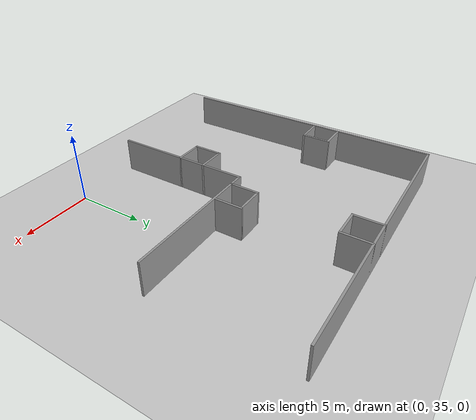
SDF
<sdf version="1.6">
 <world name="default">
  <model name="ground_plane">
   <static>1</static>
   <link name="link">
    <collision name="collision">
     <geometry><plane><normal>0 0 1</normal><size>100 100</size></plane></geometry>
     <surface><friction><ode><mu>100</mu><mu2>50</mu2></ode></friction></surface>
    </collision>
    <visual name="visual">
     <cast_shadows>0</cast_shadows>
     <geometry><plane><normal>0 0 1</normal><size>100 100</size></plane></geometry>
     <material>
      <script><uri>file://media/materials/scripts/gazebo.material</uri><name>Gazebo/Grey</name></script>
     </material>
    </visual>
   </link>
  </model>
  <model name="part_l_3">
   <link name="Wall_27">
    <pose>-0.000179 -10 0 0 -0 0</pose>
    <visual name="Wall_27_Visual">
     <pose>0 0 1.25 0 -0 0</pose>
     <geometry><box><size>20.15 0.15 2.5</size></box></geometry>
     <material>
      <script><uri>file://media/materials/scripts/gazebo.material</uri><name>Gazebo/Grey</name></script>
      <ambient>1 1 1 1</ambient>
      <diffuse>0.7 0.7 0.7 1</diffuse>
      <specular>0.01 0.01 0.01 1</specular>
      <emissive>0 0 0 1</emissive>
     </material>
    </visual>
    <collision name="Wall_27_Collision">
     <pose>0 0 1.25 0 -0 0</pose>
     <geometry><box><size>20.15 0.15 2.5</size></box></geometry>
     <surface>
      <friction>
       <ode><mu>1</mu><mu2>1</mu2><fdir1>0 0 0</fdir1><slip1>0</slip1><slip2>0</slip2></ode>
       <torsional>
        <coefficient>1</coefficient>
        <patch_radius>0</patch_radius>
        <surface_radius>0</surface_radius>
        <use_patch_radius>1</use_patch_radius>
        <ode><slip>0</slip></ode>
       </torsional>
      </friction>
      <bounce><restitution_coefficient>0</restitution_coefficient><threshold>1e+06</threshold></bounce>
      <contact>
       <collide_without_contact>0</collide_without_contact>
       <collide_without_contact_bitmask>1</collide_without_contact_bitmask>
       <collide_bitmask>1</collide_bitmask>
       <ode>
        <soft_cfm>0</soft_cfm>
        <soft_erp>0.2</soft_erp>
        <kp>1e+13</kp>
        <kd>1</kd>
        <max_vel>0.01</max_vel>
        <min_depth>0</min_depth>
       </ode>
       <bullet>
        <split_impulse>1</split_impulse>
        <split_impulse_penetration_threshold>-0.01</split_impulse_penetration_threshold>
        <soft_cfm>0</soft_cfm>
        <soft_erp>0.2</soft_erp>
        <kp>1e+13</kp>
        <kd>1</kd>
       </bullet>
      </contact>
     </surface>
    </collision>
   </link>
   <link name="Wall_28">
    <pose>9.99982 0 0 0 -0 1.5708</pose>
    <visual name="Wall_28_Visual">
     <pose>0 0 1.25 0 -0 0</pose>
     <geometry><box><size>20.15 0.15 2.5</size></box></geometry>
     <material>
      <script><uri>file://media/materials/scripts/gazebo.material</uri><name>Gazebo/Grey</name></script>
      <ambient>1 1 1 1</ambient>
      <diffuse>0.7 0.7 0.7 1</diffuse>
      <specular>0.01 0.01 0.01 1</specular>
      <emissive>0 0 0 1</emissive>
     </material>
    </visual>
    <collision name="Wall_28_Collision">
     <pose>0 0 1.25 0 -0 0</pose>
     <geometry><box><size>20.15 0.15 2.5</size></box></geometry>
     <surface>
      <friction>
       <ode><mu>1</mu><mu2>1</mu2><fdir1>0 0 0</fdir1><slip1>0</slip1><slip2>0</slip2></ode>
       <torsional>
        <coefficient>1</coefficient>
        <patch_radius>0</patch_radius>
        <surface_radius>0</surface_radius>
        <use_patch_radius>1</use_patch_radius>
        <ode><slip>0</slip></ode>
       </torsional>
      </friction>
      <bounce><restitution_coefficient>0</restitution_coefficient><threshold>1e+06</threshold></bounce>
      <contact>
       <collide_without_contact>0</collide_without_contact>
       <collide_without_contact_bitmask>1</collide_without_contact_bitmask>
       <collide_bitmask>1</collide_bitmask>
       <ode>
        <soft_cfm>0</soft_cfm>
        <soft_erp>0.2</soft_erp>
        <kp>1e+13</kp>
        <kd>1</kd>
        <max_vel>0.01</max_vel>
        <min_depth>0</min_depth>
       </ode>
       <bullet>
        <split_impulse>1</split_impulse>
        <split_impulse_penetration_threshold>-0.01</split_impulse_penetration_threshold>
        <soft_cfm>0</soft_cfm>
        <soft_erp>0.2</soft_erp>
        <kp>1e+13</kp>
        <kd>1</kd>
       </bullet>
      </contact>
     </surface>
    </collision>
   </link>
   <link name="Wall_30">
    <pose>-5.00018 0 0 0 -0 0</pose>
    <visual name="Wall_30_Visual">
     <pose>0 0 1.25 0 -0 0</pose>
     <geometry><box><size>10.15 0.15 2.5</size></box></geometry>
     <material>
      <script><uri>file://media/materials/scripts/gazebo.material</uri><name>Gazebo/Grey</name></script>
      <ambient>1 1 1 1</ambient>
      <diffuse>0.7 0.7 0.7 1</diffuse>
      <specular>0.01 0.01 0.01 1</specular>
      <emissive>0 0 0 1</emissive>
     </material>
    </visual>
    <collision name="Wall_30_Collision">
     <pose>0 0 1.25 0 -0 0</pose>
     <geometry><box><size>10.15 0.15 2.5</size></box></geometry>
     <surface>
      <friction>
       <ode><mu>1</mu><mu2>1</mu2><fdir1>0 0 0</fdir1><slip1>0</slip1><slip2>0</slip2></ode>
       <torsional>
        <coefficient>1</coefficient>
        <patch_radius>0</patch_radius>
        <surface_radius>0</surface_radius>
        <use_patch_radius>1</use_patch_radius>
        <ode><slip>0</slip></ode>
       </torsional>
      </friction>
      <bounce><restitution_coefficient>0</restitution_coefficient><threshold>1e+06</threshold></bounce>
      <contact>
       <collide_without_contact>0</collide_without_contact>
       <collide_without_contact_bitmask>1</collide_without_contact_bitmask>
       <collide_bitmask>1</collide_bitmask>
       <ode>
        <soft_cfm>0</soft_cfm>
        <soft_erp>0.2</soft_erp>
        <kp>1e+13</kp>
        <kd>1</kd>
        <max_vel>0.01</max_vel>
        <min_depth>0</min_depth>
       </ode>
       <bullet>
        <split_impulse>1</split_impulse>
        <split_impulse_penetration_threshold>-0.01</split_impulse_penetration_threshold>
        <soft_cfm>0</soft_cfm>
        <soft_erp>0.2</soft_erp>
        <kp>1e+13</kp>
        <kd>1</kd>
       </bullet>
      </contact>
     </surface>
    </collision>
   </link>
   <link name="Wall_31">
    <pose>-0.000179 5 0 0 -0 1.5708</pose>
    <visual name="Wall_31_Visual">
     <pose>0 0 1.25 0 -0 0</pose>
     <geometry><box><size>10.15 0.15 2.5</size></box></geometry>
     <material>
      <script><uri>file://media/materials/scripts/gazebo.material</uri><name>Gazebo/Grey</name></script>
      <ambient>1 1 1 1</ambient>
      <diffuse>0.7 0.7 0.7 1</diffuse>
      <specular>0.01 0.01 0.01 1</specular>
      <emissive>0 0 0 1</emissive>
     </material>
    </visual>
    <collision name="Wall_31_Collision">
     <pose>0 0 1.25 0 -0 0</pose>
     <geometry><box><size>10.15 0.15 2.5</size></box></geometry>
     <surface>
      <friction>
       <ode><mu>1</mu><mu2>1</mu2><fdir1>0 0 0</fdir1><slip1>0</slip1><slip2>0</slip2></ode>
       <torsional>
        <coefficient>1</coefficient>
        <patch_radius>0</patch_radius>
        <surface_radius>0</surface_radius>
        <use_patch_radius>1</use_patch_radius>
        <ode><slip>0</slip></ode>
       </torsional>
      </friction>
      <bounce><restitution_coefficient>0</restitution_coefficient><threshold>1e+06</threshold></bounce>
      <contact>
       <collide_without_contact>0</collide_without_contact>
       <collide_without_contact_bitmask>1</collide_without_contact_bitmask>
       <collide_bitmask>1</collide_bitmask>
       <ode>
        <soft_cfm>0</soft_cfm>
        <soft_erp>0.2</soft_erp>
        <kp>1e+13</kp>
        <kd>1</kd>
        <max_vel>0.01</max_vel>
        <min_depth>0</min_depth>
       </ode>
       <bullet>
        <split_impulse>1</split_impulse>
        <split_impulse_penetration_threshold>-0.01</split_impulse_penetration_threshold>
        <soft_cfm>0</soft_cfm>
        <soft_erp>0.2</soft_erp>
        <kp>1e+13</kp>
        <kd>1</kd>
       </bullet>
      </contact>
     </surface>
    </collision>
   </link>
   <link name="Wall_33">
    <pose>-2.00018 -9 0 0 -0 1.5708</pose>
    <visual name="Wall_33_Visual">
     <pose>0 0 1.25 0 -0 0</pose>
     <geometry><box><size>2.15 0.15 2.5</size></box></geometry>
     <material>
      <script><uri>file://media/materials/scripts/gazebo.material</uri><name>Gazebo/Grey</name></script>
      <ambient>1 1 1 1</ambient>
      <diffuse>0.7 0.7 0.7 1</diffuse>
      <specular>0.01 0.01 0.01 1</specular>
      <emissive>0 0 0 1</emissive>
     </material>
    </visual>
    <collision name="Wall_33_Collision">
     <pose>0 0 1.25 0 -0 0</pose>
     <geometry><box><size>2.15 0.15 2.5</size></box></geometry>
     <surface>
      <friction>
       <ode><mu>1</mu><mu2>1</mu2><fdir1>0 0 0</fdir1><slip1>0</slip1><slip2>0</slip2></ode>
       <torsional>
        <coefficient>1</coefficient>
        <patch_radius>0</patch_radius>
        <surface_radius>0</surface_radius>
        <use_patch_radius>1</use_patch_radius>
        <ode><slip>0</slip></ode>
       </torsional>
      </friction>
      <bounce><restitution_coefficient>0</restitution_coefficient><threshold>1e+06</threshold></bounce>
      <contact>
       <collide_without_contact>0</collide_without_contact>
       <collide_without_contact_bitmask>1</collide_without_contact_bitmask>
       <collide_bitmask>1</collide_bitmask>
       <ode>
        <soft_cfm>0</soft_cfm>
        <soft_erp>0.2</soft_erp>
        <kp>1e+13</kp>
        <kd>1</kd>
        <max_vel>0.01</max_vel>
        <min_depth>0</min_depth>
       </ode>
       <bullet>
        <split_impulse>1</split_impulse>
        <split_impulse_penetration_threshold>-0.01</split_impulse_penetration_threshold>
        <soft_cfm>0</soft_cfm>
        <soft_erp>0.2</soft_erp>
        <kp>1e+13</kp>
        <kd>1</kd>
       </bullet>
      </contact>
     </surface>
    </collision>
   </link>
   <link name="Wall_34">
    <pose>-1.00018 -8 0 0 -0 0</pose>
    <visual name="Wall_34_Visual">
     <pose>0 0 1.25 0 -0 0</pose>
     <geometry><box><size>2.15 0.15 2.5</size></box></geometry>
     <material>
      <script><uri>file://media/materials/scripts/gazebo.material</uri><name>Gazebo/Grey</name></script>
      <ambient>1 1 1 1</ambient>
      <diffuse>0.7 0.7 0.7 1</diffuse>
      <specular>0.01 0.01 0.01 1</specular>
      <emissive>0 0 0 1</emissive>
     </material>
    </visual>
    <collision name="Wall_34_Collision">
     <pose>0 0 1.25 0 -0 0</pose>
     <geometry><box><size>2.15 0.15 2.5</size></box></geometry>
     <surface>
      <friction>
       <ode><mu>1</mu><mu2>1</mu2><fdir1>0 0 0</fdir1><slip1>0</slip1><slip2>0</slip2></ode>
       <torsional>
        <coefficient>1</coefficient>
        <patch_radius>0</patch_radius>
        <surface_radius>0</surface_radius>
        <use_patch_radius>1</use_patch_radius>
        <ode><slip>0</slip></ode>
       </torsional>
      </friction>
      <bounce><restitution_coefficient>0</restitution_coefficient><threshold>1e+06</threshold></bounce>
      <contact>
       <collide_without_contact>0</collide_without_contact>
       <collide_without_contact_bitmask>1</collide_without_contact_bitmask>
       <collide_bitmask>1</collide_bitmask>
       <ode>
        <soft_cfm>0</soft_cfm>
        <soft_erp>0.2</soft_erp>
        <kp>1e+13</kp>
        <kd>1</kd>
        <max_vel>0.01</max_vel>
        <min_depth>0</min_depth>
       </ode>
       <bullet>
        <split_impulse>1</split_impulse>
        <split_impulse_penetration_threshold>-0.01</split_impulse_penetration_threshold>
        <soft_cfm>0</soft_cfm>
        <soft_erp>0.2</soft_erp>
        <kp>1e+13</kp>
        <kd>1</kd>
       </bullet>
      </contact>
     </surface>
    </collision>
   </link>
   <link name="Wall_35">
    <pose>-0.000179 -9 0 0 0 -1.5708</pose>
    <visual name="Wall_35_Visual">
     <pose>0 0 1.25 0 -0 0</pose>
     <geometry><box><size>2.15 0.15 2.5</size></box></geometry>
     <material>
      <script><uri>file://media/materials/scripts/gazebo.material</uri><name>Gazebo/Grey</name></script>
      <ambient>1 1 1 1</ambient>
      <diffuse>0.7 0.7 0.7 1</diffuse>
      <specular>0.01 0.01 0.01 1</specular>
      <emissive>0 0 0 1</emissive>
     </material>
    </visual>
    <collision name="Wall_35_Collision">
     <pose>0 0 1.25 0 -0 0</pose>
     <geometry><box><size>2.15 0.15 2.5</size></box></geometry>
     <surface>
      <friction>
       <ode><mu>1</mu><mu2>1</mu2><fdir1>0 0 0</fdir1><slip1>0</slip1><slip2>0</slip2></ode>
       <torsional>
        <coefficient>1</coefficient>
        <patch_radius>0</patch_radius>
        <surface_radius>0</surface_radius>
        <use_patch_radius>1</use_patch_radius>
        <ode><slip>0</slip></ode>
       </torsional>
      </friction>
      <bounce><restitution_coefficient>0</restitution_coefficient><threshold>1e+06</threshold></bounce>
      <contact>
       <collide_without_contact>0</collide_without_contact>
       <collide_without_contact_bitmask>1</collide_without_contact_bitmask>
       <collide_bitmask>1</collide_bitmask>
       <ode>
        <soft_cfm>0</soft_cfm>
        <soft_erp>0.2</soft_erp>
        <kp>1e+13</kp>
        <kd>1</kd>
        <max_vel>0.01</max_vel>
        <min_depth>0</min_depth>
       </ode>
       <bullet>
        <split_impulse>1</split_impulse>
        <split_impulse_penetration_threshold>-0.01</split_impulse_penetration_threshold>
        <soft_cfm>0</soft_cfm>
        <soft_erp>0.2</soft_erp>
        <kp>1e+13</kp>
        <kd>1</kd>
       </bullet>
      </contact>
     </surface>
    </collision>
   </link>
   <link name="Wall_37">
    <pose>8.99982 -1 0 0 -0 3.14159</pose>
    <visual name="Wall_37_Visual">
     <pose>0 0 1.25 0 -0 0</pose>
     <geometry><box><size>2.15072 0.15 2.5</size></box></geometry>
     <material>
      <script><uri>file://media/materials/scripts/gazebo.material</uri><name>Gazebo/Grey</name></script>
      <ambient>1 1 1 1</ambient>
      <diffuse>0.7 0.7 0.7 1</diffuse>
      <specular>0.01 0.01 0.01 1</specular>
      <emissive>0 0 0 1</emissive>
     </material>
    </visual>
    <collision name="Wall_37_Collision">
     <pose>0 0 1.25 0 -0 0</pose>
     <geometry><box><size>2.15072 0.15 2.5</size></box></geometry>
     <surface>
      <friction>
       <ode><mu>1</mu><mu2>1</mu2><fdir1>0 0 0</fdir1><slip1>0</slip1><slip2>0</slip2></ode>
       <torsional>
        <coefficient>1</coefficient>
        <patch_radius>0</patch_radius>
        <surface_radius>0</surface_radius>
        <use_patch_radius>1</use_patch_radius>
        <ode><slip>0</slip></ode>
       </torsional>
      </friction>
      <bounce><restitution_coefficient>0</restitution_coefficient><threshold>1e+06</threshold></bounce>
      <contact>
       <collide_without_contact>0</collide_without_contact>
       <collide_without_contact_bitmask>1</collide_without_contact_bitmask>
       <collide_bitmask>1</collide_bitmask>
       <ode>
        <soft_cfm>0</soft_cfm>
        <soft_erp>0.2</soft_erp>
        <kp>1e+13</kp>
        <kd>1</kd>
        <max_vel>0.01</max_vel>
        <min_depth>0</min_depth>
       </ode>
       <bullet>
        <split_impulse>1</split_impulse>
        <split_impulse_penetration_threshold>-0.01</split_impulse_penetration_threshold>
        <soft_cfm>0</soft_cfm>
        <soft_erp>0.2</soft_erp>
        <kp>1e+13</kp>
        <kd>1</kd>
       </bullet>
      </contact>
     </surface>
    </collision>
   </link>
   <link name="Wall_38">
    <pose>7.99982 -2 0 0 0 -1.5708</pose>
    <visual name="Wall_38_Visual">
     <pose>0 0 1.25 0 -0 0</pose>
     <geometry><box><size>2.15 0.15 2.5</size></box></geometry>
     <material>
      <script><uri>file://media/materials/scripts/gazebo.material</uri><name>Gazebo/Grey</name></script>
      <ambient>1 1 1 1</ambient>
      <diffuse>0.7 0.7 0.7 1</diffuse>
      <specular>0.01 0.01 0.01 1</specular>
      <emissive>0 0 0 1</emissive>
     </material>
    </visual>
    <collision name="Wall_38_Collision">
     <pose>0 0 1.25 0 -0 0</pose>
     <geometry><box><size>2.15 0.15 2.5</size></box></geometry>
     <surface>
      <friction>
       <ode><mu>1</mu><mu2>1</mu2><fdir1>0 0 0</fdir1><slip1>0</slip1><slip2>0</slip2></ode>
       <torsional>
        <coefficient>1</coefficient>
        <patch_radius>0</patch_radius>
        <surface_radius>0</surface_radius>
        <use_patch_radius>1</use_patch_radius>
        <ode><slip>0</slip></ode>
       </torsional>
      </friction>
      <bounce><restitution_coefficient>0</restitution_coefficient><threshold>1e+06</threshold></bounce>
      <contact>
       <collide_without_contact>0</collide_without_contact>
       <collide_without_contact_bitmask>1</collide_without_contact_bitmask>
       <collide_bitmask>1</collide_bitmask>
       <ode>
        <soft_cfm>0</soft_cfm>
        <soft_erp>0.2</soft_erp>
        <kp>1e+13</kp>
        <kd>1</kd>
        <max_vel>0.01</max_vel>
        <min_depth>0</min_depth>
       </ode>
       <bullet>
        <split_impulse>1</split_impulse>
        <split_impulse_penetration_threshold>-0.01</split_impulse_penetration_threshold>
        <soft_cfm>0</soft_cfm>
        <soft_erp>0.2</soft_erp>
        <kp>1e+13</kp>
        <kd>1</kd>
       </bullet>
      </contact>
     </surface>
    </collision>
   </link>
   <link name="Wall_39">
    <pose>8.99982 -3 0 0 -0 0</pose>
    <visual name="Wall_39_Visual">
     <pose>0 0 1.25 0 -0 0</pose>
     <geometry><box><size>2.15 0.15 2.5</size></box></geometry>
     <material>
      <script><uri>file://media/materials/scripts/gazebo.material</uri><name>Gazebo/Grey</name></script>
      <ambient>1 1 1 1</ambient>
      <diffuse>0.7 0.7 0.7 1</diffuse>
      <specular>0.01 0.01 0.01 1</specular>
      <emissive>0 0 0 1</emissive>
     </material>
    </visual>
    <collision name="Wall_39_Collision">
     <pose>0 0 1.25 0 -0 0</pose>
     <geometry><box><size>2.15 0.15 2.5</size></box></geometry>
     <surface>
      <friction>
       <ode><mu>1</mu><mu2>1</mu2><fdir1>0 0 0</fdir1><slip1>0</slip1><slip2>0</slip2></ode>
       <torsional>
        <coefficient>1</coefficient>
        <patch_radius>0</patch_radius>
        <surface_radius>0</surface_radius>
        <use_patch_radius>1</use_patch_radius>
        <ode><slip>0</slip></ode>
       </torsional>
      </friction>
      <bounce><restitution_coefficient>0</restitution_coefficient><threshold>1e+06</threshold></bounce>
      <contact>
       <collide_without_contact>0</collide_without_contact>
       <collide_without_contact_bitmask>1</collide_without_contact_bitmask>
       <collide_bitmask>1</collide_bitmask>
       <ode>
        <soft_cfm>0</soft_cfm>
        <soft_erp>0.2</soft_erp>
        <kp>1e+13</kp>
        <kd>1</kd>
        <max_vel>0.01</max_vel>
        <min_depth>0</min_depth>
       </ode>
       <bullet>
        <split_impulse>1</split_impulse>
        <split_impulse_penetration_threshold>-0.01</split_impulse_penetration_threshold>
        <soft_cfm>0</soft_cfm>
        <soft_erp>0.2</soft_erp>
        <kp>1e+13</kp>
        <kd>1</kd>
       </bullet>
      </contact>
     </surface>
    </collision>
   </link>
   <link name="Wall_41">
    <pose>0.999821 5 0 0 -0 0</pose>
    <visual name="Wall_41_Visual">
     <pose>0 0 1.25 0 -0 0</pose>
     <geometry><box><size>2.15 0.15 2.5</size></box></geometry>
     <material>
      <script><uri>file://media/materials/scripts/gazebo.material</uri><name>Gazebo/Grey</name></script>
      <ambient>1 1 1 1</ambient>
      <diffuse>0.7 0.7 0.7 1</diffuse>
      <specular>0.01 0.01 0.01 1</specular>
      <emissive>0 0 0 1</emissive>
     </material>
    </visual>
    <collision name="Wall_41_Collision">
     <pose>0 0 1.25 0 -0 0</pose>
     <geometry><box><size>2.15 0.15 2.5</size></box></geometry>
     <surface>
      <friction>
       <ode><mu>1</mu><mu2>1</mu2><fdir1>0 0 0</fdir1><slip1>0</slip1><slip2>0</slip2></ode>
       <torsional>
        <coefficient>1</coefficient>
        <patch_radius>0</patch_radius>
        <surface_radius>0</surface_radius>
        <use_patch_radius>1</use_patch_radius>
        <ode><slip>0</slip></ode>
       </torsional>
      </friction>
      <bounce><restitution_coefficient>0</restitution_coefficient><threshold>1e+06</threshold></bounce>
      <contact>
       <collide_without_contact>0</collide_without_contact>
       <collide_without_contact_bitmask>1</collide_without_contact_bitmask>
       <collide_bitmask>1</collide_bitmask>
       <ode>
        <soft_cfm>0</soft_cfm>
        <soft_erp>0.2</soft_erp>
        <kp>1e+13</kp>
        <kd>1</kd>
        <max_vel>0.01</max_vel>
        <min_depth>0</min_depth>
       </ode>
       <bullet>
        <split_impulse>1</split_impulse>
        <split_impulse_penetration_threshold>-0.01</split_impulse_penetration_threshold>
        <soft_cfm>0</soft_cfm>
        <soft_erp>0.2</soft_erp>
        <kp>1e+13</kp>
        <kd>1</kd>
       </bullet>
      </contact>
     </surface>
    </collision>
   </link>
   <link name="Wall_42">
    <pose>1.99982 4 0 0 0 -1.5708</pose>
    <visual name="Wall_42_Visual">
     <pose>0 0 1.25 0 -0 0</pose>
     <geometry><box><size>2.15 0.15 2.5</size></box></geometry>
     <material>
      <script><uri>file://media/materials/scripts/gazebo.material</uri><name>Gazebo/Grey</name></script>
      <ambient>1 1 1 1</ambient>
      <diffuse>0.7 0.7 0.7 1</diffuse>
      <specular>0.01 0.01 0.01 1</specular>
      <emissive>0 0 0 1</emissive>
     </material>
    </visual>
    <collision name="Wall_42_Collision">
     <pose>0 0 1.25 0 -0 0</pose>
     <geometry><box><size>2.15 0.15 2.5</size></box></geometry>
     <surface>
      <friction>
       <ode><mu>1</mu><mu2>1</mu2><fdir1>0 0 0</fdir1><slip1>0</slip1><slip2>0</slip2></ode>
       <torsional>
        <coefficient>1</coefficient>
        <patch_radius>0</patch_radius>
        <surface_radius>0</surface_radius>
        <use_patch_radius>1</use_patch_radius>
        <ode><slip>0</slip></ode>
       </torsional>
      </friction>
      <bounce><restitution_coefficient>0</restitution_coefficient><threshold>1e+06</threshold></bounce>
      <contact>
       <collide_without_contact>0</collide_without_contact>
       <collide_without_contact_bitmask>1</collide_without_contact_bitmask>
       <collide_bitmask>1</collide_bitmask>
       <ode>
        <soft_cfm>0</soft_cfm>
        <soft_erp>0.2</soft_erp>
        <kp>1e+13</kp>
        <kd>1</kd>
        <max_vel>0.01</max_vel>
        <min_depth>0</min_depth>
       </ode>
       <bullet>
        <split_impulse>1</split_impulse>
        <split_impulse_penetration_threshold>-0.01</split_impulse_penetration_threshold>
        <soft_cfm>0</soft_cfm>
        <soft_erp>0.2</soft_erp>
        <kp>1e+13</kp>
        <kd>1</kd>
       </bullet>
      </contact>
     </surface>
    </collision>
   </link>
   <link name="Wall_43">
    <pose>0.999821 3 0 0 -0 3.14159</pose>
    <visual name="Wall_43_Visual">
     <pose>0 0 1.25 0 -0 0</pose>
     <geometry><box><size>2.15 0.15 2.5</size></box></geometry>
     <material>
      <script><uri>file://media/materials/scripts/gazebo.material</uri><name>Gazebo/Grey</name></script>
      <ambient>1 1 1 1</ambient>
      <diffuse>0.7 0.7 0.7 1</diffuse>
      <specular>0.01 0.01 0.01 1</specular>
      <emissive>0 0 0 1</emissive>
     </material>
    </visual>
    <collision name="Wall_43_Collision">
     <pose>0 0 1.25 0 -0 0</pose>
     <geometry><box><size>2.15 0.15 2.5</size></box></geometry>
     <surface>
      <friction>
       <ode><mu>1</mu><mu2>1</mu2><fdir1>0 0 0</fdir1><slip1>0</slip1><slip2>0</slip2></ode>
       <torsional>
        <coefficient>1</coefficient>
        <patch_radius>0</patch_radius>
        <surface_radius>0</surface_radius>
        <use_patch_radius>1</use_patch_radius>
        <ode><slip>0</slip></ode>
       </torsional>
      </friction>
      <bounce><restitution_coefficient>0</restitution_coefficient><threshold>1e+06</threshold></bounce>
      <contact>
       <collide_without_contact>0</collide_without_contact>
       <collide_without_contact_bitmask>1</collide_without_contact_bitmask>
       <collide_bitmask>1</collide_bitmask>
       <ode>
        <soft_cfm>0</soft_cfm>
        <soft_erp>0.2</soft_erp>
        <kp>1e+13</kp>
        <kd>1</kd>
        <max_vel>0.01</max_vel>
        <min_depth>0</min_depth>
       </ode>
       <bullet>
        <split_impulse>1</split_impulse>
        <split_impulse_penetration_threshold>-0.01</split_impulse_penetration_threshold>
        <soft_cfm>0</soft_cfm>
        <soft_erp>0.2</soft_erp>
        <kp>1e+13</kp>
        <kd>1</kd>
       </bullet>
      </contact>
     </surface>
    </collision>
   </link>
   <link name="Wall_45">
    <pose>-3.00018 -1 0 0 0 -1.5708</pose>
    <visual name="Wall_45_Visual">
     <pose>0 0 1.25 0 -0 0</pose>
     <geometry><box><size>2.15 0.15 2.5</size></box></geometry>
     <material>
      <script><uri>file://media/materials/scripts/gazebo.material</uri><name>Gazebo/Grey</name></script>
      <ambient>1 1 1 1</ambient>
      <diffuse>0.7 0.7 0.7 1</diffuse>
      <specular>0.01 0.01 0.01 1</specular>
      <emissive>0 0 0 1</emissive>
     </material>
    </visual>
    <collision name="Wall_45_Collision">
     <pose>0 0 1.25 0 -0 0</pose>
     <geometry><box><size>2.15 0.15 2.5</size></box></geometry>
     <surface>
      <friction>
       <ode><mu>1</mu><mu2>1</mu2><fdir1>0 0 0</fdir1><slip1>0</slip1><slip2>0</slip2></ode>
       <torsional>
        <coefficient>1</coefficient>
        <patch_radius>0</patch_radius>
        <surface_radius>0</surface_radius>
        <use_patch_radius>1</use_patch_radius>
        <ode><slip>0</slip></ode>
       </torsional>
      </friction>
      <bounce><restitution_coefficient>0</restitution_coefficient><threshold>1e+06</threshold></bounce>
      <contact>
       <collide_without_contact>0</collide_without_contact>
       <collide_without_contact_bitmask>1</collide_without_contact_bitmask>
       <collide_bitmask>1</collide_bitmask>
       <ode>
        <soft_cfm>0</soft_cfm>
        <soft_erp>0.2</soft_erp>
        <kp>1e+13</kp>
        <kd>1</kd>
        <max_vel>0.01</max_vel>
        <min_depth>0</min_depth>
       </ode>
       <bullet>
        <split_impulse>1</split_impulse>
        <split_impulse_penetration_threshold>-0.01</split_impulse_penetration_threshold>
        <soft_cfm>0</soft_cfm>
        <soft_erp>0.2</soft_erp>
        <kp>1e+13</kp>
        <kd>1</kd>
       </bullet>
      </contact>
     </surface>
    </collision>
   </link>
   <link name="Wall_46">
    <pose>-2.00018 -2 0 0 -0 0</pose>
    <visual name="Wall_46_Visual">
     <pose>0 0 1.25 0 -0 0</pose>
     <geometry><box><size>2.15 0.15 2.5</size></box></geometry>
     <material>
      <script><uri>file://media/materials/scripts/gazebo.material</uri><name>Gazebo/Grey</name></script>
      <ambient>1 1 1 1</ambient>
      <diffuse>0.7 0.7 0.7 1</diffuse>
      <specular>0.01 0.01 0.01 1</specular>
      <emissive>0 0 0 1</emissive>
     </material>
    </visual>
    <collision name="Wall_46_Collision">
     <pose>0 0 1.25 0 -0 0</pose>
     <geometry><box><size>2.15 0.15 2.5</size></box></geometry>
     <surface>
      <friction>
       <ode><mu>1</mu><mu2>1</mu2><fdir1>0 0 0</fdir1><slip1>0</slip1><slip2>0</slip2></ode>
       <torsional>
        <coefficient>1</coefficient>
        <patch_radius>0</patch_radius>
        <surface_radius>0</surface_radius>
        <use_patch_radius>1</use_patch_radius>
        <ode><slip>0</slip></ode>
       </torsional>
      </friction>
      <bounce><restitution_coefficient>0</restitution_coefficient><threshold>1e+06</threshold></bounce>
      <contact>
       <collide_without_contact>0</collide_without_contact>
       <collide_without_contact_bitmask>1</collide_without_contact_bitmask>
       <collide_bitmask>1</collide_bitmask>
       <ode>
        <soft_cfm>0</soft_cfm>
        <soft_erp>0.2</soft_erp>
        <kp>1e+13</kp>
        <kd>1</kd>
        <max_vel>0.01</max_vel>
        <min_depth>0</min_depth>
       </ode>
       <bullet>
        <split_impulse>1</split_impulse>
        <split_impulse_penetration_threshold>-0.01</split_impulse_penetration_threshold>
        <soft_cfm>0</soft_cfm>
        <soft_erp>0.2</soft_erp>
        <kp>1e+13</kp>
        <kd>1</kd>
       </bullet>
      </contact>
     </surface>
    </collision>
   </link>
   <link name="Wall_47">
    <pose>-1.00018 -0.999 0 0 -0 1.5708</pose>
    <visual name="Wall_47_Visual">
     <pose>0 0 1.25 0 -0 0</pose>
     <geometry><box><size>2.152 0.15 2.5</size></box></geometry>
     <material>
      <script><uri>file://media/materials/scripts/gazebo.material</uri><name>Gazebo/Grey</name></script>
      <ambient>1 1 1 1</ambient>
      <diffuse>0.7 0.7 0.7 1</diffuse>
      <specular>0.01 0.01 0.01 1</specular>
      <emissive>0 0 0 1</emissive>
     </material>
    </visual>
    <collision name="Wall_47_Collision">
     <pose>0 0 1.25 0 -0 0</pose>
     <geometry><box><size>2.152 0.15 2.5</size></box></geometry>
     <surface>
      <friction>
       <ode><mu>1</mu><mu2>1</mu2><fdir1>0 0 0</fdir1><slip1>0</slip1><slip2>0</slip2></ode>
       <torsional>
        <coefficient>1</coefficient>
        <patch_radius>0</patch_radius>
        <surface_radius>0</surface_radius>
        <use_patch_radius>1</use_patch_radius>
        <ode><slip>0</slip></ode>
       </torsional>
      </friction>
      <bounce><restitution_coefficient>0</restitution_coefficient><threshold>1e+06</threshold></bounce>
      <contact>
       <collide_without_contact>0</collide_without_contact>
       <collide_without_contact_bitmask>1</collide_without_contact_bitmask>
       <collide_bitmask>1</collide_bitmask>
       <ode>
        <soft_cfm>0</soft_cfm>
        <soft_erp>0.2</soft_erp>
        <kp>1e+13</kp>
        <kd>1</kd>
        <max_vel>0.01</max_vel>
        <min_depth>0</min_depth>
       </ode>
       <bullet>
        <split_impulse>1</split_impulse>
        <split_impulse_penetration_threshold>-0.01</split_impulse_penetration_threshold>
        <soft_cfm>0</soft_cfm>
        <soft_erp>0.2</soft_erp>
        <kp>1e+13</kp>
        <kd>1</kd>
       </bullet>
      </contact>
     </surface>
    </collision>
   </link>
   <static>1</static>
   <pose>-5 45 0 0 -0 3.14</pose>
  </model>
 </world>
</sdf>
